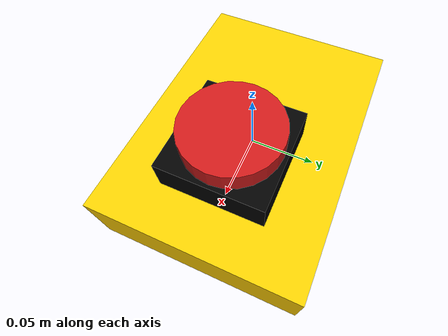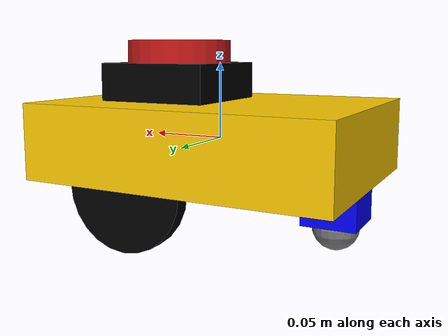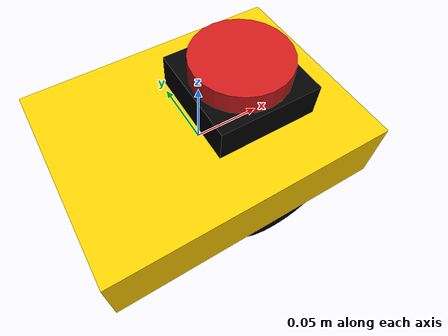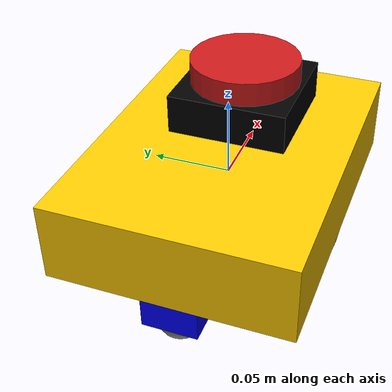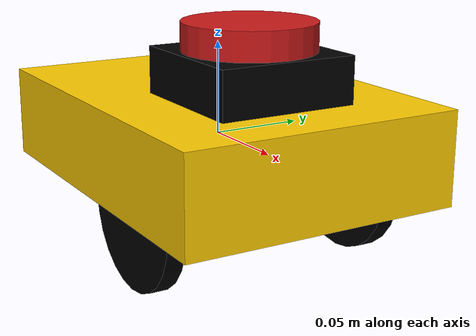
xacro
<?xml version="1.0"?>
<robot xmlns:xacro="http://ros.org/wiki/xacro" name="EduBot">

  <xacro:arg name="robot_ns" default="robot1"/>
  <xacro:property name="robot_ns" value="$(arg robot_ns)"/>

  <xacro:property name="wheel_radius" value="0.040"/>
  <xacro:property name="wheel_width" value="0.01"/>
  <xacro:property name="body_length" value="0.205"/>
  <xacro:property name="body_width" value="0.151"/>
  <xacro:property name="body_height" value="0.05"/>
  <xacro:property name="wheelbase" value="0.113"/>
  <xacro:property name="track" value="0.126"/>
  <xacro:property name="caster_radius" value="0.015"/>

  <xacro:macro name="inertial_box" params="mass x y z">
    <inertial>
      <mass value="${mass}" />
      <inertia ixx="${(1/12) * mass * (y*y+z*z)}" ixy="0.0" ixz="0.0"
               iyy="${(1/12) * mass * (x*x+z*z)}" iyz="0.0"
               izz="${(1/12) * mass * (x*x+y*y)}" />
    </inertial>
  </xacro:macro>

  <link name="base_link">
    <visual>
      <geometry><box size="${body_length} ${body_width} ${body_height}"/></geometry>
      <origin xyz="0 0 0" rpy="0 0 0"/>
      <material name="yellow"><color rgba="1 0.8 0.0 1"/></material>
    </visual>
    <collision>
      <geometry><box size="${body_length} ${body_width} ${body_height}"/></geometry>
    </collision>
    <xacro:inertial_box mass="1.0" x="${body_length}" y="${body_width}" z="${body_height}"/>
  </link>

  <link name="caster_housing_link">
    <visual>
      <geometry><box size="0.035 0.035 0.04"/></geometry>
      <origin xyz="0 0 0" rpy="0 0 0"/>
      <material name="blue"><color rgba="0 0 1 1"/></material>
    </visual>
    <collision><geometry><box size="0.035 0.035 0.04"/></geometry></collision>
    <xacro:inertial_box mass="0.1" x="0.035" y="0.035" z="0.04"/>
  </link>

  <link name="front_left_wheel">
    <visual>
      <geometry><cylinder length="${wheel_width}" radius="${wheel_radius}"/></geometry>
      <origin xyz="0 0 0" rpy="1.5708 0 0"/>
      <material name="black"><color rgba="0 0 0 1"/></material>
    </visual>
    <collision><geometry><cylinder length="${wheel_width}" radius="${wheel_radius}"/></geometry><origin xyz="0 0 0" rpy="1.5708 0 0"/></collision>
    <inertial><mass value="0.1"/><inertia ixx="0.0001" ixy="0" ixz="0" iyy="0.0001" iyz="0" izz="0.0001"/></inertial>
  </link>

  <link name="front_right_wheel">
    <visual>
      <geometry><cylinder length="${wheel_width}" radius="${wheel_radius}"/></geometry>
      <origin xyz="0 0 0" rpy="1.5708 0 0"/>
      <material name="black"><color rgba="0 0 0 1"/></material>
    </visual>
    <collision><geometry><cylinder length="${wheel_width}" radius="${wheel_radius}"/></geometry><origin xyz="0 0 0" rpy="1.5708 0 0"/></collision>
    <inertial><mass value="0.1"/><inertia ixx="0.0001" ixy="0" ixz="0" iyy="0.0001" iyz="0" izz="0.0001"/></inertial>
  </link>

  <link name="caster_wheel">
    <visual>
      <geometry><sphere radius="${caster_radius}"/></geometry>
      <origin xyz="0 0 0" rpy="0 0 0"/>
      <material name="grey"><color rgba="0.5 0.5 0.5 1"/></material>
    </visual>
    <collision><geometry><sphere radius="${caster_radius}"/></geometry></collision>
    <inertial><mass value="0.5"/><inertia ixx="0.0001" ixy="0" ixz="0" iyy="0.0001" iyz="0" izz="0.0001"/></inertial>
  </link>

  <joint name="front_left_wheel_joint" type="continuous">
    <parent link="base_link"/>
    <child link="front_left_wheel"/>
    <origin xyz="${wheelbase/2-0.025} ${track/2} -${body_height/2}" rpy="0 0 0"/>
    <axis xyz="0 1 0"/>
  </joint>

  <joint name="front_right_wheel_joint" type="continuous">
    <parent link="base_link"/>
    <child link="front_right_wheel"/>
    <origin xyz="${wheelbase/2-0.025} ${-track/2} -${body_height/2}" rpy="0 0 0"/>
    <axis xyz="0 1 0"/>
  </joint>

  <joint name="caster_housing_joint" type="fixed">
    <parent link="base_link"/>
    <child link="caster_housing_link"/>
    <origin xyz="-${wheelbase/2+0.025} 0 -0.028" rpy="0 0 0"/>
  </joint>

  <joint name="caster_joint" type="fixed">
    <parent link="base_link"/>
    <child link="caster_wheel"/>
    <origin xyz="-${wheelbase/2+0.025} 0 -${body_height/2 + wheel_radius - caster_radius}" rpy="0 0 0"/>
  </joint>

  <link name="laser">
    <visual>
      <geometry><cylinder radius="0.035" length="0.02"/></geometry>
      <material name="red"><color rgba="0.8 0.1 0.1 1.0"/></material>
    </visual>
    <collision><geometry><cylinder radius="0.035" length="0.02"/></geometry></collision>
    <inertial><mass value="0.1"/><inertia ixx="0.0001" ixy="0" ixz="0" iyy="0.0001" iyz="0" izz="0.0001"/></inertial>
  </link>

  <link name="laser_base_link">
    <visual>
      <geometry><box size="0.075 0.075 0.03"/></geometry>
      <material name="black"><color rgba="0 0 0 1.0"/></material>
    </visual>
    <collision><geometry><box size="0.075 0.075 0.03"/></geometry></collision>
    <xacro:inertial_box mass="0.1" x="0.075" y="0.075" z="0.03"/>
  </link>

  <link name="laser_sensor_link">
    <inertial>
      <mass value="0.001"/>
      <inertia ixx="0.000001" ixy="0" ixz="0"
              iyy="0.000001" iyz="0"
              izz="0.000001"/>
    </inertial>
  </link>

  <joint name="laser_sensor_joint" type="fixed">
    <parent link="base_link"/>
    <child link="laser_sensor_link"/>
    <origin xyz="0.07 0.0 0.018" rpy="0 0 0"/>
  </joint>

  <joint name="lidar_joint" type="fixed">
    <parent link="base_link"/>
    <child link="laser"/>
    <origin xyz="${wheelbase/2-0.025} 0.0 ${body_height/2 + 0.03}" rpy="0 0 0"/>
  </joint>

  <joint name="lidar_base_joint" type="fixed">
    <parent link="base_link"/>
    <child link="laser_base_link"/>
    <origin xyz="${wheelbase/2-0.025} 0.0 ${body_height/2+0.01}" rpy="0 0 0"/>
  </joint>

  <gazebo reference="front_left_wheel"><mu1>1.0</mu1><mu2>1.0</mu2></gazebo>
  <gazebo reference="front_right_wheel"><mu1>1.0</mu1><mu2>1.0</mu2></gazebo>
  <gazebo reference="caster_wheel"><mu1>0.001</mu1><mu2>0.001</mu2></gazebo>

  <gazebo>
    <plugin filename="gz-sim-diff-drive-system" name="gz::sim::systems::DiffDrive">
      <left_joint>front_left_wheel_joint</left_joint>
      <right_joint>front_right_wheel_joint</right_joint>
      <wheel_separation>${track}</wheel_separation>
      <wheel_radius>${wheel_radius}</wheel_radius>
      <topic>/${robot_ns}/cmd_vel</topic>
      <odom_topic>/${robot_ns}/odom</odom_topic>
      <frame_id>world</frame_id>
      <child_frame_id>base_link</child_frame_id>
      <odom_publish_frequency>50</odom_publish_frequency>
    </plugin>
  </gazebo>

  <gazebo reference="laser_sensor_link">
    <sensor name="lidar" type="gpu_lidar">
      <topic>/${robot_ns}/scan</topic>
      <update_rate>10</update_rate>
      <ray>
        <scan><horizontal><samples>360</samples><min_angle>-3.14</min_angle><max_angle>3.14</max_angle></horizontal></scan>
        <range><min>0.05</min><max>8.0</max></range>
      </ray>
      <visualize>true</visualize>
    </sensor>
  </gazebo>

  <gazebo>
      <plugin filename="gz-sim-pose-publisher-system" name="gz::sim::systems::PosePublisher">
        <publish_model_pose>true</publish_model_pose>
        <publish_link_pose>false</publish_link_pose>
        <publish_collision_pose>false</publish_collision_pose>
        <publish_visual_pose>false</publish_visual_pose>
        <publish_nested_model_pose>false</publish_nested_model_pose>
        <use_pose_vector_msg>false</use_pose_vector_msg>
        <update_frequency>200</update_frequency>
      </plugin>
    </gazebo>

</robot>
